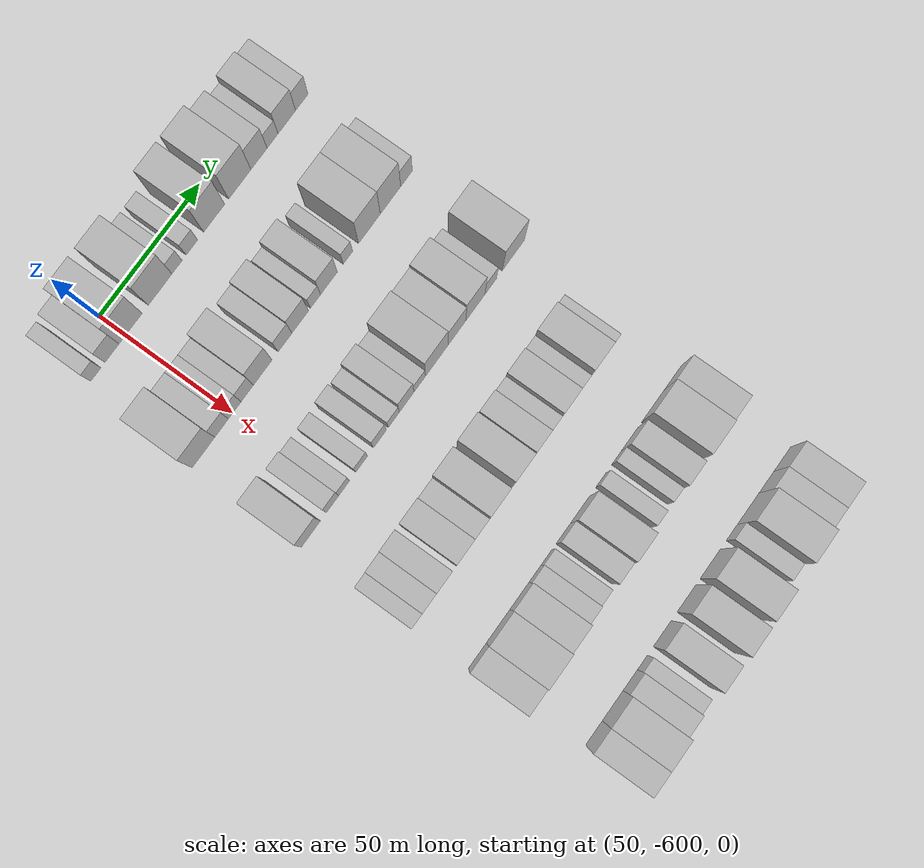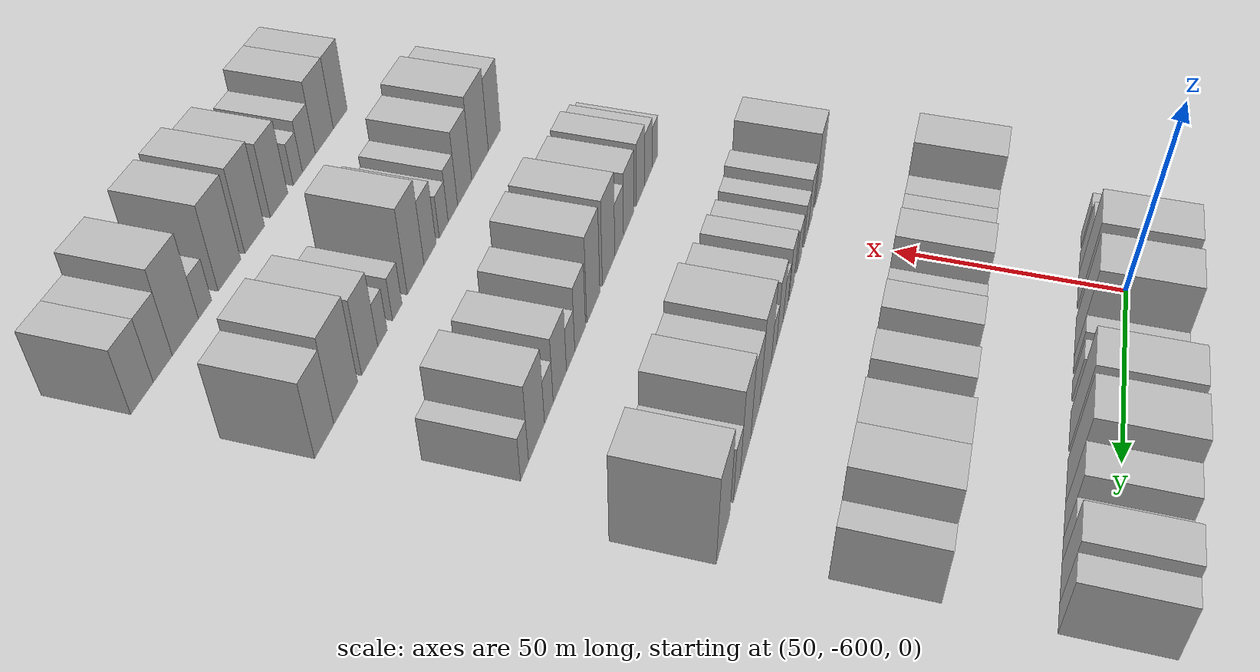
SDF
<sdf version="1.6">
 <world name="default">
  <model name="building_1">
   <static>1</static>
   <pose>50.0000 -614.5046 0 0.000000 0.000000 0.000000</pose>
   <link name="link">
    <pose>0 0 6.00 0 0 0</pose>
    <collision name="collision"><geometry><box><size>20.0000 4.9908 12.0000</size></box></geometry></collision>
    <visual name="visual">
     <cast_shadows>0</cast_shadows>
     <geometry><box><size>20.0000 4.9908 12.0000</size></box></geometry>
     <material>
      <script>
       <uri>model://HANNAS_wall/materials/scripts</uri>
       <uri>model://HANNAS_wall/materials/textures</uri>
       <name>vrc/HANNAS_wall</name>
      </script>
     </material>
    </visual>
   </link>
  </model>
  <model name="building_2">
   <static>1</static>
   <pose>50.0000 -606.5619 0 0.000000 0.000000 0.000000</pose>
   <link name="link">
    <pose>0 0 7.50 0 0 0</pose>
    <collision name="collision"><geometry><box><size>20.0000 6.8945 15.0000</size></box></geometry></collision>
    <visual name="visual">
     <cast_shadows>0</cast_shadows>
     <geometry><box><size>20.0000 6.8945 15.0000</size></box></geometry>
     <material>
      <script>
       <uri>model://HANNAS_wall/materials/scripts</uri>
       <uri>model://HANNAS_wall/materials/textures</uri>
       <name>vrc/HANNAS_wall</name>
      </script>
     </material>
    </visual>
   </link>
  </model>
  <model name="building_3">
   <static>1</static>
   <pose>50.0000 -597.4224 0 0.000000 0.000000 0.000000</pose>
   <link name="link">
    <pose>0 0 12.00 0 0 0</pose>
    <collision name="collision"><geometry><box><size>20.0000 11.3844 24.0000</size></box></geometry></collision>
    <visual name="visual">
     <cast_shadows>0</cast_shadows>
     <geometry><box><size>20.0000 11.3844 24.0000</size></box></geometry>
     <material>
      <script>
       <uri>model://HANNAS_wall/materials/scripts</uri>
       <uri>model://HANNAS_wall/materials/textures</uri>
       <name>vrc/HANNAS_wall</name>
      </script>
     </material>
    </visual>
   </link>
  </model>
  <model name="building_4">
   <static>1</static>
   <pose>50.0000 -582.8274 0 0.000000 0.000000 0.000000</pose>
   <link name="link">
    <pose>0 0 12.00 0 0 0</pose>
    <collision name="collision"><geometry><box><size>20.0000 11.8056 24.0000</size></box></geometry></collision>
    <visual name="visual">
     <cast_shadows>0</cast_shadows>
     <geometry><box><size>20.0000 11.8056 24.0000</size></box></geometry>
     <material>
      <script>
       <uri>model://HANNAS_wall/materials/scripts</uri>
       <uri>model://HANNAS_wall/materials/textures</uri>
       <name>vrc/HANNAS_wall</name>
      </script>
     </material>
    </visual>
   </link>
  </model>
  <model name="building_5">
   <static>1</static>
   <pose>50.0000 -574.3993 0 0.000000 0.000000 0.000000</pose>
   <link name="link">
    <pose>0 0 6.00 0 0 0</pose>
    <collision name="collision"><geometry><box><size>20.0000 5.0505 12.0000</size></box></geometry></collision>
    <visual name="visual">
     <cast_shadows>0</cast_shadows>
     <geometry><box><size>20.0000 5.0505 12.0000</size></box></geometry>
     <material>
      <script>
       <uri>model://HANNAS_wall/materials/scripts</uri>
       <uri>model://HANNAS_wall/materials/textures</uri>
       <name>vrc/HANNAS_wall</name>
      </script>
     </material>
    </visual>
   </link>
  </model>
  <model name="building_6">
   <static>1</static>
   <pose>50.0000 -566.9865 0 0.000000 0.000000 0.000000</pose>
   <link name="link">
    <pose>0 0 6.00 0 0 0</pose>
    <collision name="collision"><geometry><box><size>20.0000 5.7753 12.0000</size></box></geometry></collision>
    <visual name="visual">
     <cast_shadows>0</cast_shadows>
     <geometry><box><size>20.0000 5.7753 12.0000</size></box></geometry>
     <material>
      <script>
       <uri>model://HANNAS_wall/materials/scripts</uri>
       <uri>model://HANNAS_wall/materials/textures</uri>
       <name>vrc/HANNAS_wall</name>
      </script>
     </material>
    </visual>
   </link>
  </model>
  <model name="building_7">
   <static>1</static>
   <pose>50.0000 -555.8070 0 0.000000 0.000000 0.000000</pose>
   <link name="link">
    <pose>0 0 12.00 0 0 0</pose>
    <collision name="collision"><geometry><box><size>20.0000 10.5837 24.0000</size></box></geometry></collision>
    <visual name="visual">
     <cast_shadows>0</cast_shadows>
     <geometry><box><size>20.0000 10.5837 24.0000</size></box></geometry>
     <material>
      <script>
       <uri>model://HANNAS_wall/materials/scripts</uri>
       <uri>model://HANNAS_wall/materials/textures</uri>
       <name>vrc/HANNAS_wall</name>
      </script>
     </material>
    </visual>
   </link>
  </model>
  <model name="building_8">
   <static>1</static>
   <pose>50.0000 -542.8722 0 0.000000 0.000000 0.000000</pose>
   <link name="link">
    <pose>0 0 12.00 0 0 0</pose>
    <collision name="collision"><geometry><box><size>20.0000 11.2858 24.0000</size></box></geometry></collision>
    <visual name="visual">
     <cast_shadows>0</cast_shadows>
     <geometry><box><size>20.0000 11.2858 24.0000</size></box></geometry>
     <material>
      <script>
       <uri>model://HANNAS_wall/materials/scripts</uri>
       <uri>model://HANNAS_wall/materials/textures</uri>
       <name>vrc/HANNAS_wall</name>
      </script>
     </material>
    </visual>
   </link>
  </model>
  <model name="building_9">
   <static>1</static>
   <pose>50.0000 -533.1352 0 0.000000 0.000000 0.000000</pose>
   <link name="link">
    <pose>0 0 9.00 0 0 0</pose>
    <collision name="collision"><geometry><box><size>20.0000 8.1882 18.0000</size></box></geometry></collision>
    <visual name="visual">
     <cast_shadows>0</cast_shadows>
     <geometry><box><size>20.0000 8.1882 18.0000</size></box></geometry>
     <material>
      <script>
       <uri>model://HANNAS_wall/materials/scripts</uri>
       <uri>model://HANNAS_wall/materials/textures</uri>
       <name>vrc/HANNAS_wall</name>
      </script>
     </material>
    </visual>
   </link>
  </model>
  <model name="building_10">
   <static>1</static>
   <pose>50.0000 -526.2337 0 0.000000 0.000000 0.000000</pose>
   <link name="link">
    <pose>0 0 6.00 0 0 0</pose>
    <collision name="collision"><geometry><box><size>20.0000 5.6149 12.0000</size></box></geometry></collision>
    <visual name="visual">
     <cast_shadows>0</cast_shadows>
     <geometry><box><size>20.0000 5.6149 12.0000</size></box></geometry>
     <material>
      <script>
       <uri>model://HANNAS_wall/materials/scripts</uri>
       <uri>model://HANNAS_wall/materials/textures</uri>
       <name>vrc/HANNAS_wall</name>
      </script>
     </material>
    </visual>
   </link>
  </model>
  <model name="building_11">
   <static>1</static>
   <pose>50.0000 -518.9357 0 0.000000 0.000000 0.000000</pose>
   <link name="link">
    <pose>0 0 9.00 0 0 0</pose>
    <collision name="collision"><geometry><box><size>20.0000 8.9811 18.0000</size></box></geometry></collision>
    <visual name="visual">
     <cast_shadows>0</cast_shadows>
     <geometry><box><size>20.0000 8.9811 18.0000</size></box></geometry>
     <material>
      <script>
       <uri>model://HANNAS_wall/materials/scripts</uri>
       <uri>model://HANNAS_wall/materials/textures</uri>
       <name>vrc/HANNAS_wall</name>
      </script>
     </material>
    </visual>
   </link>
  </model>
  <model name="building_12">
   <static>1</static>
   <pose>50.0000 -511.2746 0 0.000000 0.000000 0.000000</pose>
   <link name="link">
    <pose>0 0 7.50 0 0 0</pose>
    <collision name="collision"><geometry><box><size>20.0000 6.3411 15.0000</size></box></geometry></collision>
    <visual name="visual">
     <cast_shadows>0</cast_shadows>
     <geometry><box><size>20.0000 6.3411 15.0000</size></box></geometry>
     <material>
      <script>
       <uri>model://HANNAS_wall/materials/scripts</uri>
       <uri>model://HANNAS_wall/materials/textures</uri>
       <name>vrc/HANNAS_wall</name>
      </script>
     </material>
    </visual>
   </link>
  </model>
  <model name="building_141">
   <static>1</static>
   <pose>90.0000 -614.4332 0 0.000000 0.000000 0.000000</pose>
   <link name="link">
    <pose>0 0 12.00 0 0 0</pose>
    <collision name="collision"><geometry><box><size>20.0000 11.1335 24.0000</size></box></geometry></collision>
    <visual name="visual">
     <cast_shadows>0</cast_shadows>
     <geometry><box><size>20.0000 11.1335 24.0000</size></box></geometry>
     <material>
      <script>
       <uri>model://HANNAS_wall/materials/scripts</uri>
       <uri>model://HANNAS_wall/materials/textures</uri>
       <name>vrc/HANNAS_wall</name>
      </script>
     </material>
    </visual>
   </link>
  </model>
  <model name="building_142">
   <static>1</static>
   <pose>90.0000 -605.5217 0 0.000000 0.000000 0.000000</pose>
   <link name="link">
    <pose>0 0 7.50 0 0 0</pose>
    <collision name="collision"><geometry><box><size>20.0000 6.6895 15.0000</size></box></geometry></collision>
    <visual name="visual">
     <cast_shadows>0</cast_shadows>
     <geometry><box><size>20.0000 6.6895 15.0000</size></box></geometry>
     <material>
      <script>
       <uri>model://HANNAS_wall/materials/scripts</uri>
       <uri>model://HANNAS_wall/materials/textures</uri>
       <name>vrc/HANNAS_wall</name>
      </script>
     </material>
    </visual>
   </link>
  </model>
  <model name="building_143">
   <static>1</static>
   <pose>90.0000 -599.0471 0 0.000000 0.000000 0.000000</pose>
   <link name="link">
    <pose>0 0 7.50 0 0 0</pose>
    <collision name="collision"><geometry><box><size>20.0000 6.2596 15.0000</size></box></geometry></collision>
    <visual name="visual">
     <cast_shadows>0</cast_shadows>
     <geometry><box><size>20.0000 6.2596 15.0000</size></box></geometry>
     <material>
      <script>
       <uri>model://HANNAS_wall/materials/scripts</uri>
       <uri>model://HANNAS_wall/materials/textures</uri>
       <name>vrc/HANNAS_wall</name>
      </script>
     </material>
    </visual>
   </link>
  </model>
  <model name="building_144">
   <static>1</static>
   <pose>90.0000 -592.8849 0 0.000000 0.000000 0.000000</pose>
   <link name="link">
    <pose>0 0 7.50 0 0 0</pose>
    <collision name="collision"><geometry><box><size>20.0000 6.0648 15.0000</size></box></geometry></collision>
    <visual name="visual">
     <cast_shadows>0</cast_shadows>
     <geometry><box><size>20.0000 6.0648 15.0000</size></box></geometry>
     <material>
      <script>
       <uri>model://HANNAS_wall/materials/scripts</uri>
       <uri>model://HANNAS_wall/materials/textures</uri>
       <name>vrc/HANNAS_wall</name>
      </script>
     </material>
    </visual>
   </link>
  </model>
  <model name="building_145">
   <static>1</static>
   <pose>90.0000 -585.1389 0 0.000000 0.000000 0.000000</pose>
   <link name="link">
    <pose>0 0 10.50 0 0 0</pose>
    <collision name="collision"><geometry><box><size>20.0000 9.4273 21.0000</size></box></geometry></collision>
    <visual name="visual">
     <cast_shadows>0</cast_shadows>
     <geometry><box><size>20.0000 9.4273 21.0000</size></box></geometry>
     <material>
      <script>
       <uri>model://HANNAS_wall/materials/scripts</uri>
       <uri>model://HANNAS_wall/materials/textures</uri>
       <name>vrc/HANNAS_wall</name>
      </script>
     </material>
    </visual>
   </link>
  </model>
  <model name="building_146">
   <static>1</static>
   <pose>90.0000 -573.9709 0 0.000000 0.000000 0.000000</pose>
   <link name="link">
    <pose>0 0 7.50 0 0 0</pose>
    <collision name="collision"><geometry><box><size>20.0000 6.9086 15.0000</size></box></geometry></collision>
    <visual name="visual">
     <cast_shadows>0</cast_shadows>
     <geometry><box><size>20.0000 6.9086 15.0000</size></box></geometry>
     <material>
      <script>
       <uri>model://HANNAS_wall/materials/scripts</uri>
       <uri>model://HANNAS_wall/materials/textures</uri>
       <name>vrc/HANNAS_wall</name>
      </script>
     </material>
    </visual>
   </link>
  </model>
  <model name="building_147">
   <static>1</static>
   <pose>90.0000 -566.3555 0 0.000000 0.000000 0.000000</pose>
   <link name="link">
    <pose>0 0 9.00 0 0 0</pose>
    <collision name="collision"><geometry><box><size>20.0000 8.3222 18.0000</size></box></geometry></collision>
    <visual name="visual">
     <cast_shadows>0</cast_shadows>
     <geometry><box><size>20.0000 8.3222 18.0000</size></box></geometry>
     <material>
      <script>
       <uri>model://HANNAS_wall/materials/scripts</uri>
       <uri>model://HANNAS_wall/materials/textures</uri>
       <name>vrc/HANNAS_wall</name>
      </script>
     </material>
    </visual>
   </link>
  </model>
  <model name="building_148">
   <static>1</static>
   <pose>90.0000 -558.6180 0 0.000000 0.000000 0.000000</pose>
   <link name="link">
    <pose>0 0 6.00 0 0 0</pose>
    <collision name="collision"><geometry><box><size>20.0000 5.1529 12.0000</size></box></geometry></collision>
    <visual name="visual">
     <cast_shadows>0</cast_shadows>
     <geometry><box><size>20.0000 5.1529 12.0000</size></box></geometry>
     <material>
      <script>
       <uri>model://HANNAS_wall/materials/scripts</uri>
       <uri>model://HANNAS_wall/materials/textures</uri>
       <name>vrc/HANNAS_wall</name>
      </script>
     </material>
    </visual>
   </link>
  </model>
  <model name="building_149">
   <static>1</static>
   <pose>90.0000 -551.8053 0 0.000000 0.000000 0.000000</pose>
   <link name="link">
    <pose>0 0 9.00 0 0 0</pose>
    <collision name="collision"><geometry><box><size>20.0000 8.4725 18.0000</size></box></geometry></collision>
    <visual name="visual">
     <cast_shadows>0</cast_shadows>
     <geometry><box><size>20.0000 8.4725 18.0000</size></box></geometry>
     <material>
      <script>
       <uri>model://HANNAS_wall/materials/scripts</uri>
       <uri>model://HANNAS_wall/materials/textures</uri>
       <name>vrc/HANNAS_wall</name>
      </script>
     </material>
    </visual>
   </link>
  </model>
  <model name="building_150">
   <static>1</static>
   <pose>90.0000 -542.1633 0 0.000000 0.000000 0.000000</pose>
   <link name="link">
    <pose>0 0 6.00 0 0 0</pose>
    <collision name="collision"><geometry><box><size>20.0000 4.8115 12.0000</size></box></geometry></collision>
    <visual name="visual">
     <cast_shadows>0</cast_shadows>
     <geometry><box><size>20.0000 4.8115 12.0000</size></box></geometry>
     <material>
      <script>
       <uri>model://HANNAS_wall/materials/scripts</uri>
       <uri>model://HANNAS_wall/materials/textures</uri>
       <name>vrc/HANNAS_wall</name>
      </script>
     </material>
    </visual>
   </link>
  </model>
  <model name="building_151">
   <static>1</static>
   <pose>90.0000 -531.1852 0 0.000000 0.000000 0.000000</pose>
   <link name="link">
    <pose>0 0 12.00 0 0 0</pose>
    <collision name="collision"><geometry><box><size>20.0000 11.1448 24.0000</size></box></geometry></collision>
    <visual name="visual">
     <cast_shadows>0</cast_shadows>
     <geometry><box><size>20.0000 11.1448 24.0000</size></box></geometry>
     <material>
      <script>
       <uri>model://HANNAS_wall/materials/scripts</uri>
       <uri>model://HANNAS_wall/materials/textures</uri>
       <name>vrc/HANNAS_wall</name>
      </script>
     </material>
    </visual>
   </link>
  </model>
  <model name="building_152">
   <static>1</static>
   <pose>90.0000 -520.3818 0 0.000000 0.000000 0.000000</pose>
   <link name="link">
    <pose>0 0 12.00 0 0 0</pose>
    <collision name="collision"><geometry><box><size>20.0000 10.4619 24.0000</size></box></geometry></collision>
    <visual name="visual">
     <cast_shadows>0</cast_shadows>
     <geometry><box><size>20.0000 10.4619 24.0000</size></box></geometry>
     <material>
      <script>
       <uri>model://HANNAS_wall/materials/scripts</uri>
       <uri>model://HANNAS_wall/materials/textures</uri>
       <name>vrc/HANNAS_wall</name>
      </script>
     </material>
    </visual>
   </link>
  </model>
  <model name="building_153">
   <static>1</static>
   <pose>90.0000 -512.1420 0 0.000000 0.000000 0.000000</pose>
   <link name="link">
    <pose>0 0 7.50 0 0 0</pose>
    <collision name="collision"><geometry><box><size>20.0000 6.0178 15.0000</size></box></geometry></collision>
    <visual name="visual">
     <cast_shadows>0</cast_shadows>
     <geometry><box><size>20.0000 6.0178 15.0000</size></box></geometry>
     <material>
      <script>
       <uri>model://HANNAS_wall/materials/scripts</uri>
       <uri>model://HANNAS_wall/materials/textures</uri>
       <name>vrc/HANNAS_wall</name>
      </script>
     </material>
    </visual>
   </link>
  </model>
  <model name="building_275">
   <static>1</static>
   <pose>130.0000 -615.2961 0 0.000000 0.000000 0.000000</pose>
   <link name="link">
    <pose>0 0 10.50 0 0 0</pose>
    <collision name="collision"><geometry><box><size>20.0000 9.4079 21.0000</size></box></geometry></collision>
    <visual name="visual">
     <cast_shadows>0</cast_shadows>
     <geometry><box><size>20.0000 9.4079 21.0000</size></box></geometry>
     <material>
      <script>
       <uri>model://HANNAS_wall/materials/scripts</uri>
       <uri>model://HANNAS_wall/materials/textures</uri>
       <name>vrc/HANNAS_wall</name>
      </script>
     </material>
    </visual>
   </link>
  </model>
  <model name="building_276">
   <static>1</static>
   <pose>130.0000 -604.5221 0 0.000000 0.000000 0.000000</pose>
   <link name="link">
    <pose>0 0 7.50 0 0 0</pose>
    <collision name="collision"><geometry><box><size>20.0000 6.1400 15.0000</size></box></geometry></collision>
    <visual name="visual">
     <cast_shadows>0</cast_shadows>
     <geometry><box><size>20.0000 6.1400 15.0000</size></box></geometry>
     <material>
      <script>
       <uri>model://HANNAS_wall/materials/scripts</uri>
       <uri>model://HANNAS_wall/materials/textures</uri>
       <name>vrc/HANNAS_wall</name>
      </script>
     </material>
    </visual>
   </link>
  </model>
  <model name="building_277">
   <static>1</static>
   <pose>130.0000 -598.7349 0 0.000000 0.000000 0.000000</pose>
   <link name="link">
    <pose>0 0 6.00 0 0 0</pose>
    <collision name="collision"><geometry><box><size>20.0000 5.4344 12.0000</size></box></geometry></collision>
    <visual name="visual">
     <cast_shadows>0</cast_shadows>
     <geometry><box><size>20.0000 5.4344 12.0000</size></box></geometry>
     <material>
      <script>
       <uri>model://HANNAS_wall/materials/scripts</uri>
       <uri>model://HANNAS_wall/materials/textures</uri>
       <name>vrc/HANNAS_wall</name>
      </script>
     </material>
    </visual>
   </link>
  </model>
  <model name="building_278">
   <static>1</static>
   <pose>130.0000 -590.0704 0 0.000000 0.000000 0.000000</pose>
   <link name="link">
    <pose>0 0 6.00 0 0 0</pose>
    <collision name="collision"><geometry><box><size>20.0000 5.8946 12.0000</size></box></geometry></collision>
    <visual name="visual">
     <cast_shadows>0</cast_shadows>
     <geometry><box><size>20.0000 5.8946 12.0000</size></box></geometry>
     <material>
      <script>
       <uri>model://HANNAS_wall/materials/scripts</uri>
       <uri>model://HANNAS_wall/materials/textures</uri>
       <name>vrc/HANNAS_wall</name>
      </script>
     </material>
    </visual>
   </link>
  </model>
  <model name="building_279">
   <static>1</static>
   <pose>130.0000 -580.8967 0 0.000000 0.000000 0.000000</pose>
   <link name="link">
    <pose>0 0 7.50 0 0 0</pose>
    <collision name="collision"><geometry><box><size>20.0000 6.4527 15.0000</size></box></geometry></collision>
    <visual name="visual">
     <cast_shadows>0</cast_shadows>
     <geometry><box><size>20.0000 6.4527 15.0000</size></box></geometry>
     <material>
      <script>
       <uri>model://HANNAS_wall/materials/scripts</uri>
       <uri>model://HANNAS_wall/materials/textures</uri>
       <name>vrc/HANNAS_wall</name>
      </script>
     </material>
    </visual>
   </link>
  </model>
  <model name="building_280">
   <static>1</static>
   <pose>130.0000 -573.8869 0 0.000000 0.000000 0.000000</pose>
   <link name="link">
    <pose>0 0 6.00 0 0 0</pose>
    <collision name="collision"><geometry><box><size>20.0000 5.5668 12.0000</size></box></geometry></collision>
    <visual name="visual">
     <cast_shadows>0</cast_shadows>
     <geometry><box><size>20.0000 5.5668 12.0000</size></box></geometry>
     <material>
      <script>
       <uri>model://HANNAS_wall/materials/scripts</uri>
       <uri>model://HANNAS_wall/materials/textures</uri>
       <name>vrc/HANNAS_wall</name>
      </script>
     </material>
    </visual>
   </link>
  </model>
  <model name="building_281">
   <static>1</static>
   <pose>130.0000 -567.4431 0 0.000000 0.000000 0.000000</pose>
   <link name="link">
    <pose>0 0 9.00 0 0 0</pose>
    <collision name="collision"><geometry><box><size>20.0000 7.3209 18.0000</size></box></geometry></collision>
    <visual name="visual">
     <cast_shadows>0</cast_shadows>
     <geometry><box><size>20.0000 7.3209 18.0000</size></box></geometry>
     <material>
      <script>
       <uri>model://HANNAS_wall/materials/scripts</uri>
       <uri>model://HANNAS_wall/materials/textures</uri>
       <name>vrc/HANNAS_wall</name>
      </script>
     </material>
    </visual>
   </link>
  </model>
  <model name="building_282">
   <static>1</static>
   <pose>130.0000 -560.8296 0 0.000000 0.000000 0.000000</pose>
   <link name="link">
    <pose>0 0 6.00 0 0 0</pose>
    <collision name="collision"><geometry><box><size>20.0000 5.9061 12.0000</size></box></geometry></collision>
    <visual name="visual">
     <cast_shadows>0</cast_shadows>
     <geometry><box><size>20.0000 5.9061 12.0000</size></box></geometry>
     <material>
      <script>
       <uri>model://HANNAS_wall/materials/scripts</uri>
       <uri>model://HANNAS_wall/materials/textures</uri>
       <name>vrc/HANNAS_wall</name>
      </script>
     </material>
    </visual>
   </link>
  </model>
  <model name="building_283">
   <static>1</static>
   <pose>130.0000 -552.1703 0 0.000000 0.000000 0.000000</pose>
   <link name="link">
    <pose>0 0 12.00 0 0 0</pose>
    <collision name="collision"><geometry><box><size>20.0000 11.4124 24.0000</size></box></geometry></collision>
    <visual name="visual">
     <cast_shadows>0</cast_shadows>
     <geometry><box><size>20.0000 11.4124 24.0000</size></box></geometry>
     <material>
      <script>
       <uri>model://HANNAS_wall/materials/scripts</uri>
       <uri>model://HANNAS_wall/materials/textures</uri>
       <name>vrc/HANNAS_wall</name>
      </script>
     </material>
    </visual>
   </link>
  </model>
  <model name="building_284">
   <static>1</static>
   <pose>130.0000 -541.9123 0 0.000000 0.000000 0.000000</pose>
   <link name="link">
    <pose>0 0 10.50 0 0 0</pose>
    <collision name="collision"><geometry><box><size>20.0000 9.1037 21.0000</size></box></geometry></collision>
    <visual name="visual">
     <cast_shadows>0</cast_shadows>
     <geometry><box><size>20.0000 9.1037 21.0000</size></box></geometry>
     <material>
      <script>
       <uri>model://HANNAS_wall/materials/scripts</uri>
       <uri>model://HANNAS_wall/materials/textures</uri>
       <name>vrc/HANNAS_wall</name>
      </script>
     </material>
    </visual>
   </link>
  </model>
  <model name="building_285">
   <static>1</static>
   <pose>130.0000 -532.4083 0 0.000000 0.000000 0.000000</pose>
   <link name="link">
    <pose>0 0 12.00 0 0 0</pose>
    <collision name="collision"><geometry><box><size>20.0000 9.9042 24.0000</size></box></geometry></collision>
    <visual name="visual">
     <cast_shadows>0</cast_shadows>
     <geometry><box><size>20.0000 9.9042 24.0000</size></box></geometry>
     <material>
      <script>
       <uri>model://HANNAS_wall/materials/scripts</uri>
       <uri>model://HANNAS_wall/materials/textures</uri>
       <name>vrc/HANNAS_wall</name>
      </script>
     </material>
    </visual>
   </link>
  </model>
  <model name="building_286">
   <static>1</static>
   <pose>130.0000 -524.4481 0 0.000000 0.000000 0.000000</pose>
   <link name="link">
    <pose>0 0 7.50 0 0 0</pose>
    <collision name="collision"><geometry><box><size>20.0000 6.0163 15.0000</size></box></geometry></collision>
    <visual name="visual">
     <cast_shadows>0</cast_shadows>
     <geometry><box><size>20.0000 6.0163 15.0000</size></box></geometry>
     <material>
      <script>
       <uri>model://HANNAS_wall/materials/scripts</uri>
       <uri>model://HANNAS_wall/materials/textures</uri>
       <name>vrc/HANNAS_wall</name>
      </script>
     </material>
    </visual>
   </link>
  </model>
  <model name="building_287">
   <static>1</static>
   <pose>130.0000 -512.6882 0 0.000000 0.000000 0.000000</pose>
   <link name="link">
    <pose>0 0 12.00 0 0 0</pose>
    <collision name="collision"><geometry><box><size>20.0000 11.5035 24.0000</size></box></geometry></collision>
    <visual name="visual">
     <cast_shadows>0</cast_shadows>
     <geometry><box><size>20.0000 11.5035 24.0000</size></box></geometry>
     <material>
      <script>
       <uri>model://HANNAS_wall/materials/scripts</uri>
       <uri>model://HANNAS_wall/materials/textures</uri>
       <name>vrc/HANNAS_wall</name>
      </script>
     </material>
    </visual>
   </link>
  </model>
  <model name="building_414">
   <static>1</static>
   <pose>170.0000 -617.3572 0 0.000000 0.000000 0.000000</pose>
   <link name="link">
    <pose>0 0 6.00 0 0 0</pose>
    <collision name="collision"><geometry><box><size>20.0000 5.2855 12.0000</size></box></geometry></collision>
    <visual name="visual">
     <cast_shadows>0</cast_shadows>
     <geometry><box><size>20.0000 5.2855 12.0000</size></box></geometry>
     <material>
      <script>
       <uri>model://HANNAS_wall/materials/scripts</uri>
       <uri>model://HANNAS_wall/materials/textures</uri>
       <name>vrc/HANNAS_wall</name>
      </script>
     </material>
    </visual>
   </link>
  </model>
  <model name="building_415">
   <static>1</static>
   <pose>170.0000 -611.2273 0 0.000000 0.000000 0.000000</pose>
   <link name="link">
    <pose>0 0 7.50 0 0 0</pose>
    <collision name="collision"><geometry><box><size>20.0000 6.9743 15.0000</size></box></geometry></collision>
    <visual name="visual">
     <cast_shadows>0</cast_shadows>
     <geometry><box><size>20.0000 6.9743 15.0000</size></box></geometry>
     <material>
      <script>
       <uri>model://HANNAS_wall/materials/scripts</uri>
       <uri>model://HANNAS_wall/materials/textures</uri>
       <name>vrc/HANNAS_wall</name>
      </script>
     </material>
    </visual>
   </link>
  </model>
  <model name="building_416">
   <static>1</static>
   <pose>170.0000 -603.9141 0 0.000000 0.000000 0.000000</pose>
   <link name="link">
    <pose>0 0 9.00 0 0 0</pose>
    <collision name="collision"><geometry><box><size>20.0000 7.6521 18.0000</size></box></geometry></collision>
    <visual name="visual">
     <cast_shadows>0</cast_shadows>
     <geometry><box><size>20.0000 7.6521 18.0000</size></box></geometry>
     <material>
      <script>
       <uri>model://HANNAS_wall/materials/scripts</uri>
       <uri>model://HANNAS_wall/materials/textures</uri>
       <name>vrc/HANNAS_wall</name>
      </script>
     </material>
    </visual>
   </link>
  </model>
  <model name="building_417">
   <static>1</static>
   <pose>170.0000 -593.6308 0 0.000000 0.000000 0.000000</pose>
   <link name="link">
    <pose>0 0 9.00 0 0 0</pose>
    <collision name="collision"><geometry><box><size>20.0000 8.9146 18.0000</size></box></geometry></collision>
    <visual name="visual">
     <cast_shadows>0</cast_shadows>
     <geometry><box><size>20.0000 8.9146 18.0000</size></box></geometry>
     <material>
      <script>
       <uri>model://HANNAS_wall/materials/scripts</uri>
       <uri>model://HANNAS_wall/materials/textures</uri>
       <name>vrc/HANNAS_wall</name>
      </script>
     </material>
    </visual>
   </link>
  </model>
  <model name="building_418">
   <static>1</static>
   <pose>170.0000 -585.5633 0 0.000000 0.000000 0.000000</pose>
   <link name="link">
    <pose>0 0 7.50 0 0 0</pose>
    <collision name="collision"><geometry><box><size>20.0000 7.2205 15.0000</size></box></geometry></collision>
    <visual name="visual">
     <cast_shadows>0</cast_shadows>
     <geometry><box><size>20.0000 7.2205 15.0000</size></box></geometry>
     <material>
      <script>
       <uri>model://HANNAS_wall/materials/scripts</uri>
       <uri>model://HANNAS_wall/materials/textures</uri>
       <name>vrc/HANNAS_wall</name>
      </script>
     </material>
    </visual>
   </link>
  </model>
  <model name="building_419">
   <static>1</static>
   <pose>170.0000 -576.9656 0 0.000000 0.000000 0.000000</pose>
   <link name="link">
    <pose>0 0 12.00 0 0 0</pose>
    <collision name="collision"><geometry><box><size>20.0000 9.9749 24.0000</size></box></geometry></collision>
    <visual name="visual">
     <cast_shadows>0</cast_shadows>
     <geometry><box><size>20.0000 9.9749 24.0000</size></box></geometry>
     <material>
      <script>
       <uri>model://HANNAS_wall/materials/scripts</uri>
       <uri>model://HANNAS_wall/materials/textures</uri>
       <name>vrc/HANNAS_wall</name>
      </script>
     </material>
    </visual>
   </link>
  </model>
  <model name="building_420">
   <static>1</static>
   <pose>170.0000 -565.0429 0 0.000000 0.000000 0.000000</pose>
   <link name="link">
    <pose>0 0 12.00 0 0 0</pose>
    <collision name="collision"><geometry><box><size>20.0000 9.8704 24.0000</size></box></geometry></collision>
    <visual name="visual">
     <cast_shadows>0</cast_shadows>
     <geometry><box><size>20.0000 9.8704 24.0000</size></box></geometry>
     <material>
      <script>
       <uri>model://HANNAS_wall/materials/scripts</uri>
       <uri>model://HANNAS_wall/materials/textures</uri>
       <name>vrc/HANNAS_wall</name>
      </script>
     </material>
    </visual>
   </link>
  </model>
  <model name="building_421">
   <static>1</static>
   <pose>170.0000 -555.2381 0 0.000000 0.000000 0.000000</pose>
   <link name="link">
    <pose>0 0 9.00 0 0 0</pose>
    <collision name="collision"><geometry><box><size>20.0000 7.7390 18.0000</size></box></geometry></collision>
    <visual name="visual">
     <cast_shadows>0</cast_shadows>
     <geometry><box><size>20.0000 7.7390 18.0000</size></box></geometry>
     <material>
      <script>
       <uri>model://HANNAS_wall/materials/scripts</uri>
       <uri>model://HANNAS_wall/materials/textures</uri>
       <name>vrc/HANNAS_wall</name>
      </script>
     </material>
    </visual>
   </link>
  </model>
  <model name="building_422">
   <static>1</static>
   <pose>170.0000 -548.4484 0 0.000000 0.000000 0.000000</pose>
   <link name="link">
    <pose>0 0 6.00 0 0 0</pose>
    <collision name="collision"><geometry><box><size>20.0000 5.8404 12.0000</size></box></geometry></collision>
    <visual name="visual">
     <cast_shadows>0</cast_shadows>
     <geometry><box><size>20.0000 5.8404 12.0000</size></box></geometry>
     <material>
      <script>
       <uri>model://HANNAS_wall/materials/scripts</uri>
       <uri>model://HANNAS_wall/materials/textures</uri>
       <name>vrc/HANNAS_wall</name>
      </script>
     </material>
    </visual>
   </link>
  </model>
  <model name="building_423">
   <static>1</static>
   <pose>170.0000 -541.0565 0 0.000000 0.000000 0.000000</pose>
   <link name="link">
    <pose>0 0 9.00 0 0 0</pose>
    <collision name="collision"><geometry><box><size>20.0000 8.9435 18.0000</size></box></geometry></collision>
    <visual name="visual">
     <cast_shadows>0</cast_shadows>
     <geometry><box><size>20.0000 8.9435 18.0000</size></box></geometry>
     <material>
      <script>
       <uri>model://HANNAS_wall/materials/scripts</uri>
       <uri>model://HANNAS_wall/materials/textures</uri>
       <name>vrc/HANNAS_wall</name>
      </script>
     </material>
    </visual>
   </link>
  </model>
  <model name="building_424">
   <static>1</static>
   <pose>170.0000 -533.7342 0 0.000000 0.000000 0.000000</pose>
   <link name="link">
    <pose>0 0 6.00 0 0 0</pose>
    <collision name="collision"><geometry><box><size>20.0000 5.7011 12.0000</size></box></geometry></collision>
    <visual name="visual">
     <cast_shadows>0</cast_shadows>
     <geometry><box><size>20.0000 5.7011 12.0000</size></box></geometry>
     <material>
      <script>
       <uri>model://HANNAS_wall/materials/scripts</uri>
       <uri>model://HANNAS_wall/materials/textures</uri>
       <name>vrc/HANNAS_wall</name>
      </script>
     </material>
    </visual>
   </link>
  </model>
  <model name="building_425">
   <static>1</static>
   <pose>170.0000 -525.8792 0 0.000000 0.000000 0.000000</pose>
   <link name="link">
    <pose>0 0 10.50 0 0 0</pose>
    <collision name="collision"><geometry><box><size>20.0000 10.0088 21.0000</size></box></geometry></collision>
    <visual name="visual">
     <cast_shadows>0</cast_shadows>
     <geometry><box><size>20.0000 10.0088 21.0000</size></box></geometry>
     <material>
      <script>
       <uri>model://HANNAS_wall/materials/scripts</uri>
       <uri>model://HANNAS_wall/materials/textures</uri>
       <name>vrc/HANNAS_wall</name>
      </script>
     </material>
    </visual>
   </link>
  </model>
  <model name="building_426">
   <static>1</static>
   <pose>170.0000 -518.4439 0 0.000000 0.000000 0.000000</pose>
   <link name="link">
    <pose>0 0 6.00 0 0 0</pose>
    <collision name="collision"><geometry><box><size>20.0000 4.8619 12.0000</size></box></geometry></collision>
    <visual name="visual">
     <cast_shadows>0</cast_shadows>
     <geometry><box><size>20.0000 4.8619 12.0000</size></box></geometry>
     <material>
      <script>
       <uri>model://HANNAS_wall/materials/scripts</uri>
       <uri>model://HANNAS_wall/materials/textures</uri>
       <name>vrc/HANNAS_wall</name>
      </script>
     </material>
    </visual>
   </link>
  </model>
  <model name="building_541">
   <static>1</static>
   <pose>210.0000 -615.4951 0 0.000000 0.000000 0.000000</pose>
   <link name="link">
    <pose>0 0 10.50 0 0 0</pose>
    <collision name="collision"><geometry><box><size>20.0000 9.0098 21.0000</size></box></geometry></collision>
    <visual name="visual">
     <cast_shadows>0</cast_shadows>
     <geometry><box><size>20.0000 9.0098 21.0000</size></box></geometry>
     <material>
      <script>
       <uri>model://HANNAS_wall/materials/scripts</uri>
       <uri>model://HANNAS_wall/materials/textures</uri>
       <name>vrc/HANNAS_wall</name>
      </script>
     </material>
    </visual>
   </link>
  </model>
  <model name="building_542">
   <static>1</static>
   <pose>210.0000 -605.0832 0 0.000000 0.000000 0.000000</pose>
   <link name="link">
    <pose>0 0 12.00 0 0 0</pose>
    <collision name="collision"><geometry><box><size>20.0000 11.8140 24.0000</size></box></geometry></collision>
    <visual name="visual">
     <cast_shadows>0</cast_shadows>
     <geometry><box><size>20.0000 11.8140 24.0000</size></box></geometry>
     <material>
      <script>
       <uri>model://HANNAS_wall/materials/scripts</uri>
       <uri>model://HANNAS_wall/materials/textures</uri>
       <name>vrc/HANNAS_wall</name>
      </script>
     </material>
    </visual>
   </link>
  </model>
  <model name="building_543">
   <static>1</static>
   <pose>210.0000 -594.4177 0 0.000000 0.000000 0.000000</pose>
   <link name="link">
    <pose>0 0 10.50 0 0 0</pose>
    <collision name="collision"><geometry><box><size>20.0000 9.5169 21.0000</size></box></geometry></collision>
    <visual name="visual">
     <cast_shadows>0</cast_shadows>
     <geometry><box><size>20.0000 9.5169 21.0000</size></box></geometry>
     <material>
      <script>
       <uri>model://HANNAS_wall/materials/scripts</uri>
       <uri>model://HANNAS_wall/materials/textures</uri>
       <name>vrc/HANNAS_wall</name>
      </script>
     </material>
    </visual>
   </link>
  </model>
  <model name="building_544">
   <static>1</static>
   <pose>210.0000 -586.5894 0 0.000000 0.000000 0.000000</pose>
   <link name="link">
    <pose>0 0 7.50 0 0 0</pose>
    <collision name="collision"><geometry><box><size>20.0000 6.1398 15.0000</size></box></geometry></collision>
    <visual name="visual">
     <cast_shadows>0</cast_shadows>
     <geometry><box><size>20.0000 6.1398 15.0000</size></box></geometry>
     <material>
      <script>
       <uri>model://HANNAS_wall/materials/scripts</uri>
       <uri>model://HANNAS_wall/materials/textures</uri>
       <name>vrc/HANNAS_wall</name>
      </script>
     </material>
    </visual>
   </link>
  </model>
  <model name="building_545">
   <static>1</static>
   <pose>210.0000 -580.6689 0 0.000000 0.000000 0.000000</pose>
   <link name="link">
    <pose>0 0 6.00 0 0 0</pose>
    <collision name="collision"><geometry><box><size>20.0000 5.7011 12.0000</size></box></geometry></collision>
    <visual name="visual">
     <cast_shadows>0</cast_shadows>
     <geometry><box><size>20.0000 5.7011 12.0000</size></box></geometry>
     <material>
      <script>
       <uri>model://HANNAS_wall/materials/scripts</uri>
       <uri>model://HANNAS_wall/materials/textures</uri>
       <name>vrc/HANNAS_wall</name>
      </script>
     </material>
    </visual>
   </link>
  </model>
  <model name="building_546">
   <static>1</static>
   <pose>210.0000 -572.1355 0 0.000000 0.000000 0.000000</pose>
   <link name="link">
    <pose>0 0 9.00 0 0 0</pose>
    <collision name="collision"><geometry><box><size>20.0000 7.3656 18.0000</size></box></geometry></collision>
    <visual name="visual">
     <cast_shadows>0</cast_shadows>
     <geometry><box><size>20.0000 7.3656 18.0000</size></box></geometry>
     <material>
      <script>
       <uri>model://HANNAS_wall/materials/scripts</uri>
       <uri>model://HANNAS_wall/materials/textures</uri>
       <name>vrc/HANNAS_wall</name>
      </script>
     </material>
    </visual>
   </link>
  </model>
  <model name="building_547">
   <static>1</static>
   <pose>210.0000 -563.4989 0 0.000000 0.000000 0.000000</pose>
   <link name="link">
    <pose>0 0 12.00 0 0 0</pose>
    <collision name="collision"><geometry><box><size>20.0000 9.9075 24.0000</size></box></geometry></collision>
    <visual name="visual">
     <cast_shadows>0</cast_shadows>
     <geometry><box><size>20.0000 9.9075 24.0000</size></box></geometry>
     <material>
      <script>
       <uri>model://HANNAS_wall/materials/scripts</uri>
       <uri>model://HANNAS_wall/materials/textures</uri>
       <name>vrc/HANNAS_wall</name>
      </script>
     </material>
    </visual>
   </link>
  </model>
  <model name="building_548">
   <static>1</static>
   <pose>210.0000 -552.8928 0 0.000000 0.000000 0.000000</pose>
   <link name="link">
    <pose>0 0 6.00 0 0 0</pose>
    <collision name="collision"><geometry><box><size>20.0000 5.3048 12.0000</size></box></geometry></collision>
    <visual name="visual">
     <cast_shadows>0</cast_shadows>
     <geometry><box><size>20.0000 5.3048 12.0000</size></box></geometry>
     <material>
      <script>
       <uri>model://HANNAS_wall/materials/scripts</uri>
       <uri>model://HANNAS_wall/materials/textures</uri>
       <name>vrc/HANNAS_wall</name>
      </script>
     </material>
    </visual>
   </link>
  </model>
  <model name="building_549">
   <static>1</static>
   <pose>210.0000 -544.7009 0 0.000000 0.000000 0.000000</pose>
   <link name="link">
    <pose>0 0 6.00 0 0 0</pose>
    <collision name="collision"><geometry><box><size>20.0000 5.0790 12.0000</size></box></geometry></collision>
    <visual name="visual">
     <cast_shadows>0</cast_shadows>
     <geometry><box><size>20.0000 5.0790 12.0000</size></box></geometry>
     <material>
      <script>
       <uri>model://HANNAS_wall/materials/scripts</uri>
       <uri>model://HANNAS_wall/materials/textures</uri>
       <name>vrc/HANNAS_wall</name>
      </script>
     </material>
    </visual>
   </link>
  </model>
  <model name="building_550">
   <static>1</static>
   <pose>210.0000 -537.9334 0 0.000000 0.000000 0.000000</pose>
   <link name="link">
    <pose>0 0 10.50 0 0 0</pose>
    <collision name="collision"><geometry><box><size>20.0000 8.4559 21.0000</size></box></geometry></collision>
    <visual name="visual">
     <cast_shadows>0</cast_shadows>
     <geometry><box><size>20.0000 8.4559 21.0000</size></box></geometry>
     <material>
      <script>
       <uri>model://HANNAS_wall/materials/scripts</uri>
       <uri>model://HANNAS_wall/materials/textures</uri>
       <name>vrc/HANNAS_wall</name>
      </script>
     </material>
    </visual>
   </link>
  </model>
  <model name="building_551">
   <static>1</static>
   <pose>210.0000 -525.8381 0 0.000000 0.000000 0.000000</pose>
   <link name="link">
    <pose>0 0 12.00 0 0 0</pose>
    <collision name="collision"><geometry><box><size>20.0000 11.7346 24.0000</size></box></geometry></collision>
    <visual name="visual">
     <cast_shadows>0</cast_shadows>
     <geometry><box><size>20.0000 11.7346 24.0000</size></box></geometry>
     <material>
      <script>
       <uri>model://HANNAS_wall/materials/scripts</uri>
       <uri>model://HANNAS_wall/materials/textures</uri>
       <name>vrc/HANNAS_wall</name>
      </script>
     </material>
    </visual>
   </link>
  </model>
  <model name="building_552">
   <static>1</static>
   <pose>210.0000 -515.4673 0 0.000000 0.000000 0.000000</pose>
   <link name="link">
    <pose>0 0 10.50 0 0 0</pose>
    <collision name="collision"><geometry><box><size>20.0000 9.0069 21.0000</size></box></geometry></collision>
    <visual name="visual">
     <cast_shadows>0</cast_shadows>
     <geometry><box><size>20.0000 9.0069 21.0000</size></box></geometry>
     <material>
      <script>
       <uri>model://HANNAS_wall/materials/scripts</uri>
       <uri>model://HANNAS_wall/materials/textures</uri>
       <name>vrc/HANNAS_wall</name>
      </script>
     </material>
    </visual>
   </link>
  </model>
  <model name="building_687">
   <static>1</static>
   <pose>250.0000 -613.7643 0 0.000000 0.000000 0.000000</pose>
   <link name="link">
    <pose>0 0 10.50 0 0 0</pose>
    <collision name="collision"><geometry><box><size>20.0000 8.4714 21.0000</size></box></geometry></collision>
    <visual name="visual">
     <cast_shadows>0</cast_shadows>
     <geometry><box><size>20.0000 8.4714 21.0000</size></box></geometry>
     <material>
      <script>
       <uri>model://HANNAS_wall/materials/scripts</uri>
       <uri>model://HANNAS_wall/materials/textures</uri>
       <name>vrc/HANNAS_wall</name>
      </script>
     </material>
    </visual>
   </link>
  </model>
  <model name="building_688">
   <static>1</static>
   <pose>250.0000 -604.2908 0 0.000000 0.000000 0.000000</pose>
   <link name="link">
    <pose>0 0 10.50 0 0 0</pose>
    <collision name="collision"><geometry><box><size>20.0000 10.4755 21.0000</size></box></geometry></collision>
    <visual name="visual">
     <cast_shadows>0</cast_shadows>
     <geometry><box><size>20.0000 10.4755 21.0000</size></box></geometry>
     <material>
      <script>
       <uri>model://HANNAS_wall/materials/scripts</uri>
       <uri>model://HANNAS_wall/materials/textures</uri>
       <name>vrc/HANNAS_wall</name>
      </script>
     </material>
    </visual>
   </link>
  </model>
  <model name="building_689">
   <static>1</static>
   <pose>250.0000 -595.3794 0 0.000000 0.000000 0.000000</pose>
   <link name="link">
    <pose>0 0 7.50 0 0 0</pose>
    <collision name="collision"><geometry><box><size>20.0000 7.3472 15.0000</size></box></geometry></collision>
    <visual name="visual">
     <cast_shadows>0</cast_shadows>
     <geometry><box><size>20.0000 7.3472 15.0000</size></box></geometry>
     <material>
      <script>
       <uri>model://HANNAS_wall/materials/scripts</uri>
       <uri>model://HANNAS_wall/materials/textures</uri>
       <name>vrc/HANNAS_wall</name>
      </script>
     </material>
    </visual>
   </link>
  </model>
  <model name="building_690">
   <static>1</static>
   <pose>250.0000 -589.1731 0 0.000000 0.000000 0.000000</pose>
   <link name="link">
    <pose>0 0 6.00 0 0 0</pose>
    <collision name="collision"><geometry><box><size>20.0000 5.0655 12.0000</size></box></geometry></collision>
    <visual name="visual">
     <cast_shadows>0</cast_shadows>
     <geometry><box><size>20.0000 5.0655 12.0000</size></box></geometry>
     <material>
      <script>
       <uri>model://HANNAS_wall/materials/scripts</uri>
       <uri>model://HANNAS_wall/materials/textures</uri>
       <name>vrc/HANNAS_wall</name>
      </script>
     </material>
    </visual>
   </link>
  </model>
  <model name="building_691">
   <static>1</static>
   <pose>250.0000 -579.0440 0 0.000000 0.000000 0.000000</pose>
   <link name="link">
    <pose>0 0 10.50 0 0 0</pose>
    <collision name="collision"><geometry><box><size>20.0000 9.1926 21.0000</size></box></geometry></collision>
    <visual name="visual">
     <cast_shadows>0</cast_shadows>
     <geometry><box><size>20.0000 9.1926 21.0000</size></box></geometry>
     <material>
      <script>
       <uri>model://HANNAS_wall/materials/scripts</uri>
       <uri>model://HANNAS_wall/materials/textures</uri>
       <name>vrc/HANNAS_wall</name>
      </script>
     </material>
    </visual>
   </link>
  </model>
  <model name="building_692">
   <static>1</static>
   <pose>250.0000 -566.5282 0 0.000000 0.000000 0.000000</pose>
   <link name="link">
    <pose>0 0 12.00 0 0 0</pose>
    <collision name="collision"><geometry><box><size>20.0000 9.8391 24.0000</size></box></geometry></collision>
    <visual name="visual">
     <cast_shadows>0</cast_shadows>
     <geometry><box><size>20.0000 9.8391 24.0000</size></box></geometry>
     <material>
      <script>
       <uri>model://HANNAS_wall/materials/scripts</uri>
       <uri>model://HANNAS_wall/materials/textures</uri>
       <name>vrc/HANNAS_wall</name>
      </script>
     </material>
    </visual>
   </link>
  </model>
  <model name="building_693">
   <static>1</static>
   <pose>250.0000 -554.2702 0 0.000000 0.000000 0.000000</pose>
   <link name="link">
    <pose>0 0 12.00 0 0 0</pose>
    <collision name="collision"><geometry><box><size>20.0000 10.6768 24.0000</size></box></geometry></collision>
    <visual name="visual">
     <cast_shadows>0</cast_shadows>
     <geometry><box><size>20.0000 10.6768 24.0000</size></box></geometry>
     <material>
      <script>
       <uri>model://HANNAS_wall/materials/scripts</uri>
       <uri>model://HANNAS_wall/materials/textures</uri>
       <name>vrc/HANNAS_wall</name>
      </script>
     </material>
    </visual>
   </link>
  </model>
  <model name="building_694">
   <static>1</static>
   <pose>250.0000 -542.9720 0 0.000000 0.000000 0.000000</pose>
   <link name="link">
    <pose>0 0 6.00 0 0 0</pose>
    <collision name="collision"><geometry><box><size>20.0000 5.9196 12.0000</size></box></geometry></collision>
    <visual name="visual">
     <cast_shadows>0</cast_shadows>
     <geometry><box><size>20.0000 5.9196 12.0000</size></box></geometry>
     <material>
      <script>
       <uri>model://HANNAS_wall/materials/scripts</uri>
       <uri>model://HANNAS_wall/materials/textures</uri>
       <name>vrc/HANNAS_wall</name>
      </script>
     </material>
    </visual>
   </link>
  </model>
  <model name="building_695">
   <static>1</static>
   <pose>250.0000 -534.3756 0 0.000000 0.000000 0.000000</pose>
   <link name="link">
    <pose>0 0 12.00 0 0 0</pose>
    <collision name="collision"><geometry><box><size>20.0000 11.2733 24.0000</size></box></geometry></collision>
    <visual name="visual">
     <cast_shadows>0</cast_shadows>
     <geometry><box><size>20.0000 11.2733 24.0000</size></box></geometry>
     <material>
      <script>
       <uri>model://HANNAS_wall/materials/scripts</uri>
       <uri>model://HANNAS_wall/materials/textures</uri>
       <name>vrc/HANNAS_wall</name>
      </script>
     </material>
    </visual>
   </link>
  </model>
  <model name="building_696">
   <static>1</static>
   <pose>250.0000 -524.8301 0 0.000000 0.000000 0.000000</pose>
   <link name="link">
    <pose>0 0 9.00 0 0 0</pose>
    <collision name="collision"><geometry><box><size>20.0000 7.8177 18.0000</size></box></geometry></collision>
    <visual name="visual">
     <cast_shadows>0</cast_shadows>
     <geometry><box><size>20.0000 7.8177 18.0000</size></box></geometry>
     <material>
      <script>
       <uri>model://HANNAS_wall/materials/scripts</uri>
       <uri>model://HANNAS_wall/materials/textures</uri>
       <name>vrc/HANNAS_wall</name>
      </script>
     </material>
    </visual>
   </link>
  </model>
  <model name="building_697">
   <static>1</static>
   <pose>250.0000 -516.4455 0 0.000000 0.000000 0.000000</pose>
   <link name="link">
    <pose>0 0 9.00 0 0 0</pose>
    <collision name="collision"><geometry><box><size>20.0000 8.9516 18.0000</size></box></geometry></collision>
    <visual name="visual">
     <cast_shadows>0</cast_shadows>
     <geometry><box><size>20.0000 8.9516 18.0000</size></box></geometry>
     <material>
      <script>
       <uri>model://HANNAS_wall/materials/scripts</uri>
       <uri>model://HANNAS_wall/materials/textures</uri>
       <name>vrc/HANNAS_wall</name>
      </script>
     </material>
    </visual>
   </link>
  </model>
 </world>
</sdf>
